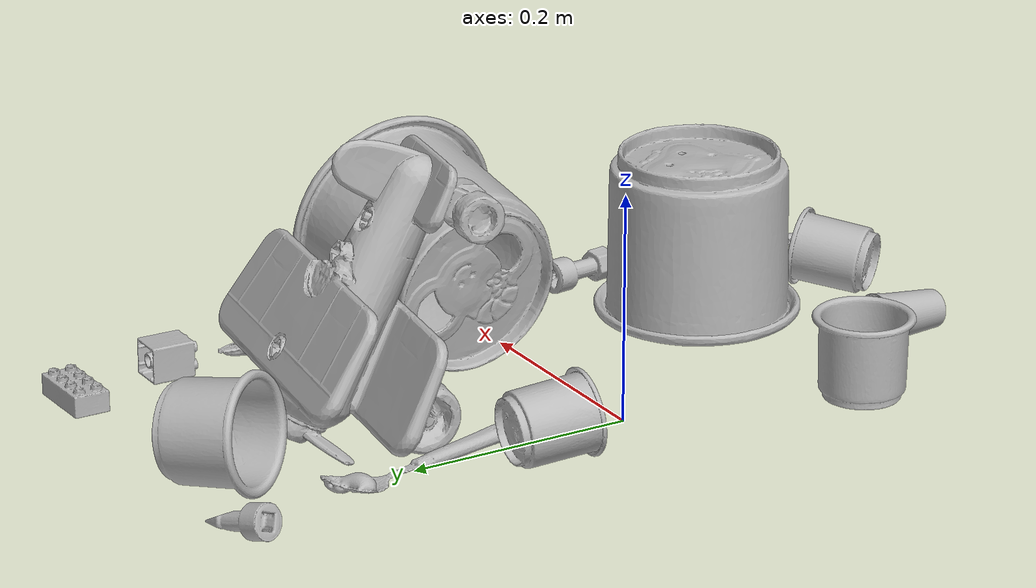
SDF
<sdf version="1.4">
  <world name="default">
    <light name="light1" type="point">
      <pose>0 0 1 0 0 0</pose>
      <diffuse>3 3 3 1</diffuse>
      <specular>3 3 3 1</specular>
    </light>
    <light name="light2" type="point">
      <pose>0 0.5 2 0 0 0</pose>
      <diffuse>1 1 1 1</diffuse>
      <specular>1 1 1 1</specular>
    </light>
    <light name="light3" type="point">
      <pose>0 0.5 2 0 0 0</pose>
      <diffuse>3 3 3 1</diffuse>
      <specular>3 3 3 1</specular>
    </light>
    <scene>
      <ambient>0.7 0.7 0.7</ambient>
    </scene>
    <model name="cup1">
      <link name="link_cup1">
        <collision name="default">
          <geometry>
            <mesh>
              <uri>model://d_cups/collision_meshes/collision.obj</uri>
              <scale>1.0 1.0 1.0</scale>
            </mesh>
          </geometry>
          <surface>
            <friction>
              <ode>
                <mu>0.5</mu>
                <mu2>0.5</mu2>
              </ode>
            </friction>
          <contact>
        <ode>
            <max_vel>0</max_vel>
            <min_depth>0.0001</min_depth>
            <kp>1e8</kp>
        </ode>
    </contact></surface>
        </collision>
        <visual name="default">
          <geometry>
            <mesh>
              <uri>model://d_cups/visual_meshes/visual.dae</uri>
              <scale>1.0 1.0 1.0</scale>
            </mesh>
          </geometry>
        </visual>
        <inertial>
          <mass>0.02583918906748295</mass>
          <pose>0.0008068039314821362 0.001911739120259881 -0.0022666507866233587 0.24011637128749466 -0.2471028358176743 0.5942765290496752</pose>
          <inertia>
            <ixx>2.1633481e-05</ixx>
            <iyy>2.1570875e-05</iyy>
            <izz>1.9581978e-05</izz>
            <ixy>0</ixy>
            <ixz>0</ixz>
            <iyz>0</iyz>
          </inertia>
        </inertial>
      </link>
      <pose>0.1579952985048294 -0.3238304555416107 0.03239026293158531 -1.424606803440459 0.7879922814049839 -0.8102370733195371</pose>
    </model>
    <model name="silverware1">
      <link name="link_silverware1">
        <collision name="default">
          <geometry>
            <mesh>
              <uri>model://fork/collision_meshes/collision.obj</uri>
              <scale>1.0 1.0 1.0</scale>
            </mesh>
          </geometry>
          <surface>
            <friction>
              <ode>
                <mu>0.5</mu>
                <mu2>0.5</mu2>
              </ode>
            </friction>
          <contact>
        <ode>
            <max_vel>0</max_vel>
            <min_depth>0.0001</min_depth>
            <kp>1e8</kp>
        </ode>
    </contact></surface>
        </collision>
        <visual name="default">
          <geometry>
            <mesh>
              <uri>model://fork/visual_meshes/visual.dae</uri>
              <scale>1.0 1.0 1.0</scale>
            </mesh>
          </geometry>
        </visual>
        <inertial>
          <mass>0.019409121945500374</mass>
          <pose>-0.02957003004848957 0.00046588227269239724 0.0003218860365450382 -0.013551247621251511 -0.010977829980421018 0.014453895491116085</pose>
          <inertia>
            <ixx>6.8039935e-07</ixx>
            <iyy>5.0671635e-05</iyy>
            <izz>5.097597e-05</izz>
            <ixy>0</ixy>
            <ixz>0</ixz>
            <iyz>0</iyz>
          </inertia>
        </inertial>
      </link>
      <pose>0.2758072316646576 -0.293123722076416 0.005693735554814339 -0.17681667665167547 0.025528265506664333 -1.7362424900373723</pose>
    </model>
    <model name="cup2">
      <link name="link_cup2">
        <collision name="default">
          <geometry>
            <mesh>
              <uri>model://e_cups/collision_meshes/collision.obj</uri>
              <scale>1.0 1.0 1.0</scale>
            </mesh>
          </geometry>
          <surface>
            <friction>
              <ode>
                <mu>0.5</mu>
                <mu2>0.5</mu2>
              </ode>
            </friction>
          <contact>
        <ode>
            <max_vel>0</max_vel>
            <min_depth>0.0001</min_depth>
            <kp>1e8</kp>
        </ode>
    </contact></surface>
        </collision>
        <visual name="default">
          <geometry>
            <mesh>
              <uri>model://e_cups/visual_meshes/visual.dae</uri>
              <scale>1.0 1.0 1.0</scale>
            </mesh>
          </geometry>
        </visual>
        <inertial>
          <mass>0.044056184589862823</mass>
          <pose>0.0011355748865753412 0.0028797839768230915 -0.0038829699624329805 0.6952404811842238 0.0876797234541652 -0.5235249298074676</pose>
          <inertia>
            <ixx>3.8846523e-05</ixx>
            <iyy>4.060018e-05</iyy>
            <izz>3.714177e-05</izz>
            <ixy>0</ixy>
            <ixz>0</ixz>
            <iyz>0</iyz>
          </inertia>
        </inertial>
      </link>
      <pose>-0.03778144717216492 0.09603510051965714 0.034922704100608826 -1.479327082326823 0.18481121858558813 3.053922980973985</pose>
    </model>
    <model name="silverware2">
      <link name="link_silverware2">
        <collision name="default">
          <geometry>
            <mesh>
              <uri>model://knife/collision_meshes/collision.obj</uri>
              <scale>1.0 1.0 1.0</scale>
            </mesh>
          </geometry>
          <surface>
            <friction>
              <ode>
                <mu>0.5</mu>
                <mu2>0.5</mu2>
              </ode>
            </friction>
          <contact>
        <ode>
            <max_vel>0</max_vel>
            <min_depth>0.0001</min_depth>
            <kp>1e8</kp>
        </ode>
    </contact></surface>
        </collision>
        <visual name="default">
          <geometry>
            <mesh>
              <uri>model://knife/visual_meshes/visual.dae</uri>
              <scale>1.0 1.0 1.0</scale>
            </mesh>
          </geometry>
        </visual>
        <inertial>
          <mass>0.018338654190301895</mass>
          <pose>-0.02378525212407112 0.00152751209679991 5.062017953605391e-05 0.07305878484845407 0.017248414361503102 -0.007409825003193847</pose>
          <inertia>
            <ixx>5.2052525e-07</ixx>
            <iyy>7.045415e-05</iyy>
            <izz>7.062178e-05</izz>
            <ixy>0</ixy>
            <ixz>0</ixz>
            <iyz>0</iyz>
          </inertia>
        </inertial>
      </link>
      <pose>0.28345564007759094 0.12322939932346344 0.007940653711557388 -0.005438596168063228 -0.014505277267836889 1.5195528115282058</pose>
    </model>
    <model name="cup3">
      <link name="link_cup3">
        <collision name="default">
          <geometry>
            <mesh>
              <uri>model://g_cups/collision_meshes/collision.obj</uri>
              <scale>1.0 1.0 1.0</scale>
            </mesh>
          </geometry>
          <surface>
            <friction>
              <ode>
                <mu>0.5</mu>
                <mu2>0.5</mu2>
              </ode>
            </friction>
          <contact>
        <ode>
            <max_vel>0</max_vel>
            <min_depth>0.0001</min_depth>
            <kp>1e8</kp>
        </ode>
    </contact></surface>
        </collision>
        <visual name="default">
          <geometry>
            <mesh>
              <uri>model://g_cups/visual_meshes/visual.dae</uri>
              <scale>1.0 1.0 1.0</scale>
            </mesh>
          </geometry>
        </visual>
        <inertial>
          <mass>0.07798270881175995</mass>
          <pose>-0.0007946274126879871 -4.206407902529463e-05 -0.0021329382434487343 -0.21383467808934026 -0.31409923984197585 0.31123390815877217</pose>
          <inertia>
            <ixx>9.102333e-05</ixx>
            <iyy>9.0713715e-05</iyy>
            <izz>9.428446e-05</izz>
            <ixy>0</ixy>
            <ixz>0</ixz>
            <iyz>0</iyz>
          </inertia>
        </inertial>
      </link>
      <pose>-0.05709933489561081 -0.20131489634513855 0.03720301017165184 -1.7665437031385938e-07 3.487339841055145e-07 2.4714524351534526</pose>
    </model>
    <model name="silverware3">
      <link name="link_silverware3">
        <collision name="default">
          <geometry>
            <mesh>
              <uri>model://spoon/collision_meshes/collision.obj</uri>
              <scale>1.0 1.0 1.0</scale>
            </mesh>
          </geometry>
          <surface>
            <friction>
              <ode>
                <mu>0.5</mu>
                <mu2>0.5</mu2>
              </ode>
            </friction>
          <contact>
        <ode>
            <max_vel>0</max_vel>
            <min_depth>0.0001</min_depth>
            <kp>1e8</kp>
        </ode>
    </contact></surface>
        </collision>
        <visual name="default">
          <geometry>
            <mesh>
              <uri>model://spoon/visual_meshes/visual.dae</uri>
              <scale>1.0 1.0 1.0</scale>
            </mesh>
          </geometry>
        </visual>
        <inertial>
          <mass>0.03767607361078262</mass>
          <pose>-0.005526314023882151 -0.00160341733135283 -0.0007271650829352438 0.035216427360727776 -0.03906582911385382 0.006150613897789847</pose>
          <inertia>
            <ixx>2.095604e-06</ixx>
            <iyy>0.00014335623</iyy>
            <izz>0.00014438969</izz>
            <ixy>0</ixy>
            <ixz>0</ixz>
            <iyz>0</iyz>
          </inertia>
        </inertial>
      </link>
      <pose>-0.0026473826728761196 0.19720454514026642 0.00838526338338852 0.006731887092108615 0.026892986246818445 1.7579181376170274</pose>
    </model>
    <model name="cup4">
      <link name="link_cup4">
        <collision name="default">
          <geometry>
            <mesh>
              <uri>model://i_cups/collision_meshes/collision.obj</uri>
              <scale>2.0 2.0 2.0</scale>
            </mesh>
          </geometry>
          <surface>
            <friction>
              <ode>
                <mu>0.5</mu>
                <mu2>0.5</mu2>
              </ode>
            </friction>
          <contact>
        <ode>
            <max_vel>0</max_vel>
            <min_depth>0.0001</min_depth>
            <kp>1e8</kp>
        </ode>
    </contact></surface>
        </collision>
        <visual name="default">
          <geometry>
            <mesh>
              <uri>model://i_cups/visual_meshes/visual.dae</uri>
              <scale>2.0 2.0 2.0</scale>
            </mesh>
          </geometry>
        </visual>
        <inertial>
          <mass>0.5538490414619446</mass>
          <pose>0.00022480632469523698 0.00033594807609915733 -0.0017158057307824492 -0.028982964625507153 -0.039873324075769 -0.3459146585522926</pose>
          <inertia>
            <ixx>0.003067248</ixx>
            <iyy>0.003094273</iyy>
            <izz>0.0034281453</izz>
            <ixy>0</ixy>
            <ixz>0</ixz>
            <iyz>0</iyz>
          </inertia>
        </inertial>
      </link>
      <pose>0.21082547307014465 0.060834404081106186 0.09097684919834137 1.3293985312555832 0.8955993681002348 1.4045956681486689</pose>
    </model>
    <model name="cup41">
      <link name="link_cup41">
        <collision name="default">
          <geometry>
            <mesh>
              <uri>model://cup_small/collision_meshes/collision.obj</uri>
              <scale>1.0 1.0 1.0</scale>
            </mesh>
          </geometry>
          <surface>
            <friction>
              <ode>
                <mu>0.5</mu>
                <mu2>0.5</mu2>
              </ode>
            </friction>
          <contact>
        <ode>
            <max_vel>0</max_vel>
            <min_depth>0.0001</min_depth>
            <kp>1e8</kp>
        </ode>
    </contact></surface>
        </collision>
        <visual name="default">
          <geometry>
            <mesh>
              <uri>model://cup_small/visual_meshes/visual.dae</uri>
              <scale>1.0 1.0 1.0</scale>
            </mesh>
          </geometry>
        </visual>
        <inertial>
          <mass>0.014494861476123333</mass>
          <pose>0.000104824714071583 -0.0003377838584128767 -0.010742826387286186 -0.01149312034772668 -0.015280288652376739 -0.5058210166411498</pose>
          <inertia>
            <ixx>8.534352e-06</ixx>
            <iyy>8.578376e-06</iyy>
            <izz>3.853286e-06</izz>
            <ixy>0</ixy>
            <ixz>0</ixz>
            <iyz>0</iyz>
          </inertia>
        </inertial>
      </link>
      <pose>0.033931806683540344 -0.3107673227787018 0.020198257640004158 1.46805749709131 0.6364236729108274 -3.095144247937259</pose>
    </model>
    <model name="cup5">
      <link name="link_cup5">
        <collision name="default">
          <geometry>
            <mesh>
              <uri>model://h_cups/collision_meshes/collision.obj</uri>
              <scale>2.0 2.0 2.0</scale>
            </mesh>
          </geometry>
          <surface>
            <friction>
              <ode>
                <mu>0.5</mu>
                <mu2>0.5</mu2>
              </ode>
            </friction>
          <contact>
        <ode>
            <max_vel>0</max_vel>
            <min_depth>0.0001</min_depth>
            <kp>1e8</kp>
        </ode>
    </contact></surface>
        </collision>
        <visual name="default">
          <geometry>
            <mesh>
              <uri>model://h_cups/visual_meshes/visual.dae</uri>
              <scale>2.0 2.0 2.0</scale>
            </mesh>
          </geometry>
        </visual>
        <inertial>
          <mass>0.5365790128707886</mass>
          <pose>-5.406028139987029e-05 0.00046037189895287156 -0.0036810787860304117 -0.02436222281077587 0.06545240855648493 0.12885003891433794</pose>
          <inertia>
            <ixx>0.002771868</ixx>
            <iyy>0.0027387904</iyy>
            <izz>0.0029069292</izz>
            <ixy>0</ixy>
            <ixz>0</ixz>
            <iyz>0</iyz>
          </inertia>
        </inertial>
      </link>
      <pose>0.1767229586839676 -0.1887298822402954 0.07506007701158524 -3.141592638411324 3.063687734930367e-09 -2.4004163450969065</pose>
    </model>
    <model name="cup51">
      <link name="link_cup51">
        <collision name="default">
          <geometry>
            <mesh>
              <uri>model://j_cups/collision_meshes/collision.obj</uri>
              <scale>1.0 1.0 1.0</scale>
            </mesh>
          </geometry>
          <surface>
            <friction>
              <ode>
                <mu>0.5</mu>
                <mu2>0.5</mu2>
              </ode>
            </friction>
          <contact>
        <ode>
            <max_vel>0</max_vel>
            <min_depth>0.0001</min_depth>
            <kp>1e8</kp>
        </ode>
    </contact></surface>
        </collision>
        <visual name="default">
          <geometry>
            <mesh>
              <uri>model://j_cups/visual_meshes/visual.dae</uri>
              <scale>1.0 1.0 1.0</scale>
            </mesh>
          </geometry>
        </visual>
        <inertial>
          <mass>0.08643309026956558</mass>
          <pose>0.0006164878141134977 0.000539897009730339 -0.0013479007175192237 0.030303582878034346 0.03757999590477698 0.4386876701083768</pose>
          <inertia>
            <ixx>0.00012691108</ixx>
            <iyy>0.00012823076</iyy>
            <izz>0.00014630218</izz>
            <ixy>0</ixy>
            <ixz>0</ixz>
            <iyz>0</iyz>
          </inertia>
        </inertial>
      </link>
      <pose>0.055480048060417175 0.3486337959766388 0.047167446464300156 -1.4256117855706825 0.5309576211648137 2.2716499441366875</pose>
    </model>
    <model name="toy1">
      <link name="link_toy1">
        <collision name="default">
          <geometry>
            <mesh>
              <uri>model://f_lego_duplo/collision_meshes/collision.obj</uri>
              <scale>1.0 1.0 1.0</scale>
            </mesh>
          </geometry>
          <surface>
            <friction>
              <ode>
                <mu>0.5</mu>
                <mu2>0.5</mu2>
              </ode>
            </friction>
          <contact>
        <ode>
            <max_vel>0</max_vel>
            <min_depth>0.0001</min_depth>
            <kp>1e8</kp>
        </ode>
    </contact></surface>
        </collision>
        <visual name="default">
          <geometry>
            <mesh>
              <uri>model://f_lego_duplo/visual_meshes/visual.dae</uri>
              <scale>1.0 1.0 1.0</scale>
            </mesh>
          </geometry>
        </visual>
        <inertial>
          <mass>0.03726755082607269</mass>
          <pose>2.3694148694630712e-05 0.00013393144763540477 0.0018837880343198776 0.029838475432906467 -0.014425202105620092 -0.6756589304715467</pose>
          <inertia>
            <ixx>7.874838e-06</ixx>
            <iyy>7.944995e-06</iyy>
            <izz>6.8356926e-06</izz>
            <ixy>0</ixy>
            <ixz>0</ixz>
            <iyz>0</iyz>
          </inertia>
        </inertial>
      </link>
      <pose>0.28347498178482056 0.27916571497917175 0.01636398397386074 1.2358788495752102 -1.5707914184218077 0.3275887926060918</pose>
    </model>
    <model name="toy2">
      <link name="link_toy2">
        <collision name="default">
          <geometry>
            <mesh>
              <uri>model://a_toy_airplane/collision_meshes/collision.obj</uri>
              <scale>1.0 1.0 1.0</scale>
            </mesh>
          </geometry>
          <surface>
            <friction>
              <ode>
                <mu>0.5</mu>
                <mu2>0.5</mu2>
              </ode>
            </friction>
          <contact>
        <ode>
            <max_vel>0</max_vel>
            <min_depth>0.0001</min_depth>
            <kp>1e8</kp>
        </ode>
    </contact></surface>
        </collision>
        <visual name="default">
          <geometry>
            <mesh>
              <uri>model://a_toy_airplane/visual_meshes/visual.dae</uri>
              <scale>1.0 1.0 1.0</scale>
            </mesh>
          </geometry>
        </visual>
        <inertial>
          <mass>2.8230273723602295</mass>
          <pose>0.025165094062685966 -0.003707324154675007 -0.0011962448479607701 -0.012016973205606891 -0.14663498091084715 0.004149146833454428</pose>
          <inertia>
            <ixx>0.010251767</ixx>
            <iyy>0.014938904</iyy>
            <izz>0.017491622</izz>
            <ixy>0</ixy>
            <ixz>0</ixz>
            <iyz>0</iyz>
          </inertia>
        </inertial>
      </link>
      <pose>0.08195237815380096 0.19978928565979004 0.12491204589605331 0.000695528852189924 1.2428800713763137 1.4332892920876195</pose>
    </model>
    <model name="toy3">
      <link name="link_toy3">
        <collision name="default">
          <geometry>
            <mesh>
              <uri>model://e_toy_airplane/collision_meshes/collision.obj</uri>
              <scale>1.0 1.0 1.0</scale>
            </mesh>
          </geometry>
          <surface>
            <friction>
              <ode>
                <mu>0.5</mu>
                <mu2>0.5</mu2>
              </ode>
            </friction>
          <contact>
        <ode>
            <max_vel>0</max_vel>
            <min_depth>0.0001</min_depth>
            <kp>1e8</kp>
        </ode>
    </contact></surface>
        </collision>
        <visual name="default">
          <geometry>
            <mesh>
              <uri>model://e_toy_airplane/visual_meshes/visual.dae</uri>
              <scale>1.0 1.0 1.0</scale>
            </mesh>
          </geometry>
        </visual>
        <inertial>
          <mass>0.018226178362965584</mass>
          <pose>0.00011740501213353127 -2.2482903659692965e-05 -0.011187204159796238 0.005518473613481416 0.009228340672948143 0.1504115676354622</pose>
          <inertia>
            <ixx>5.5628384e-06</ixx>
            <iyy>5.505933e-06</iyy>
            <izz>1.6718515e-06</izz>
            <ixy>0</ixy>
            <ixz>0</ixz>
            <iyz>0</iyz>
          </inertia>
        </inertial>
      </link>
      <pose>-0.032330241054296494 0.37564632296562195 0.010869762860238552 3.003475122968442 1.3102999624891813 -2.94398173867857</pose>
    </model>
    <model name="toy4">
      <link name="link_toy4">
        <collision name="default">
          <geometry>
            <mesh>
              <uri>model://c_toy_airplane/collision_meshes/collision.obj</uri>
              <scale>1.0 1.0 1.0</scale>
            </mesh>
          </geometry>
          <surface>
            <friction>
              <ode>
                <mu>0.5</mu>
                <mu2>0.5</mu2>
              </ode>
            </friction>
          <contact>
        <ode>
            <max_vel>0</max_vel>
            <min_depth>0.0001</min_depth>
            <kp>1e8</kp>
        </ode>
    </contact></surface>
        </collision>
        <visual name="default">
          <geometry>
            <mesh>
              <uri>model://c_toy_airplane/visual_meshes/visual.dae</uri>
              <scale>1.0 1.0 1.0</scale>
            </mesh>
          </geometry>
        </visual>
        <inertial>
          <mass>0.025432955473661423</mass>
          <pose>-0.00023024249821901321 -4.429159048413567e-07 -0.006080531049519777 -0.006192114712999555 -0.016797950833505656 0.7654545807195076</pose>
          <inertia>
            <ixx>1.1678292e-05</ixx>
            <iyy>1.1645335e-05</iyy>
            <izz>2.7418316e-06</izz>
            <ixy>0</ixy>
            <ixz>0</ixz>
            <iyz>0</iyz>
          </inertia>
        </inertial>
      </link>
      <pose>0.27996498346328735 -0.13045138120651245 0.015085233375430107 -1.598744138094519 -0.5769422372637572 -2.957853829469591</pose>
    </model>
    <model name="toy5">
      <link name="link_toy5">
        <collision name="default">
          <geometry>
            <mesh>
              <uri>model://c_lego_duplo/collision_meshes/collision.obj</uri>
              <scale>1.0 1.0 1.0</scale>
            </mesh>
          </geometry>
          <surface>
            <friction>
              <ode>
                <mu>0.5</mu>
                <mu2>0.5</mu2>
              </ode>
            </friction>
          <contact>
        <ode>
            <max_vel>0</max_vel>
            <min_depth>0.0001</min_depth>
            <kp>1e8</kp>
        </ode>
    </contact></surface>
        </collision>
        <visual name="default">
          <geometry>
            <mesh>
              <uri>model://c_lego_duplo/visual_meshes/visual.dae</uri>
              <scale>1.0 1.0 1.0</scale>
            </mesh>
          </geometry>
        </visual>
        <inertial>
          <mass>0.03308485820889473</mass>
          <pose>0.00031645988929085433 0.00019464598153717816 0.0010453154100105166 -0.011520788894510418 0.005900092683279709 0.031100331745055027</pose>
          <inertia>
            <ixx>1.2731672e-05</ixx>
            <iyy>4.066954e-06</iyy>
            <izz>1.4878268e-05</izz>
            <ixy>0</ixy>
            <ixz>0</ixz>
            <iyz>0</iyz>
          </inertia>
        </inertial>
      </link>
      <pose>0.2674379050731659 0.373979777097702 0.011981484480202198 0.008019352436210693 -0.0020915520230141964 1.5611770267337326</pose>
    </model>
  <physics type="ode">
      <max_contacts>50</max_contacts>
      <ode>
        <solver>
          <type>quick</type>
          <iters>75</iters>
        </solver>
        <constraints>
          <contact_max_correcting_vel>0</contact_max_correcting_vel>
          <contact_surface_layer>0</contact_surface_layer>
        </constraints>
      </ode>
    </physics></world>
</sdf>
